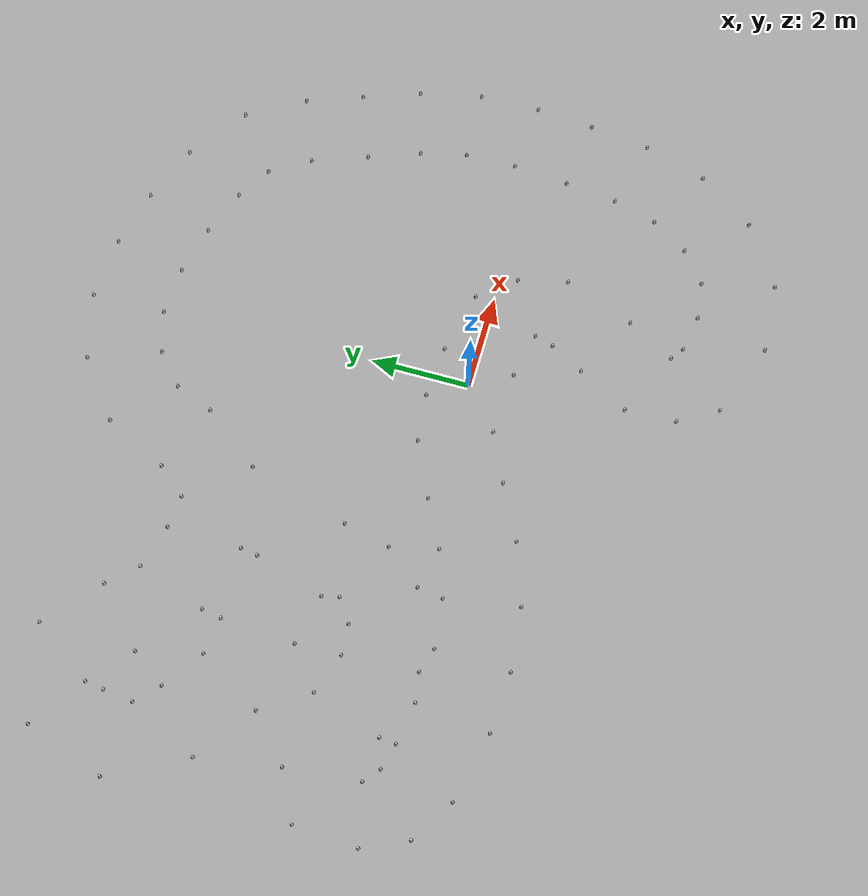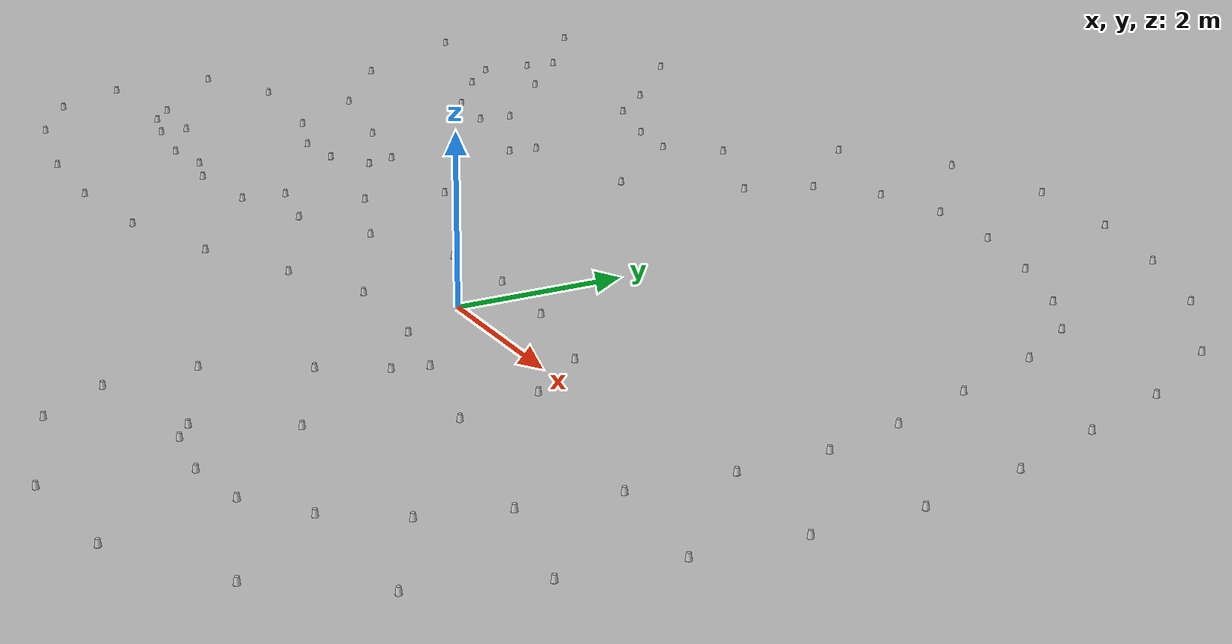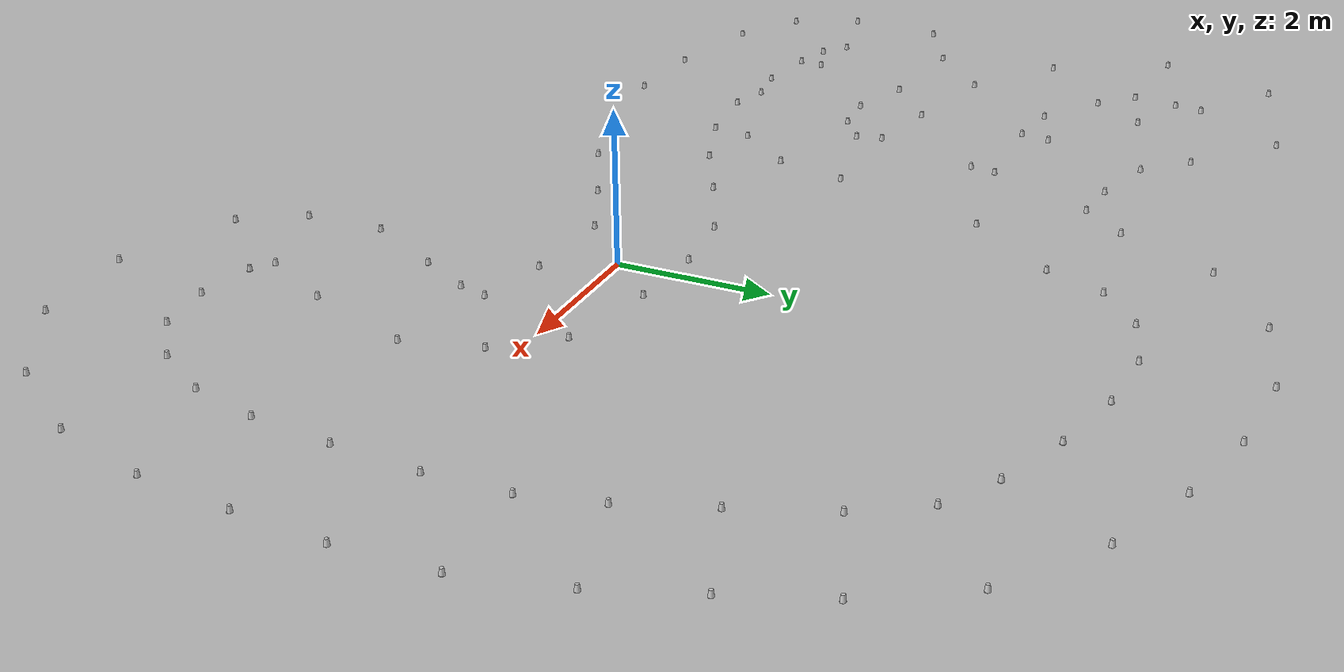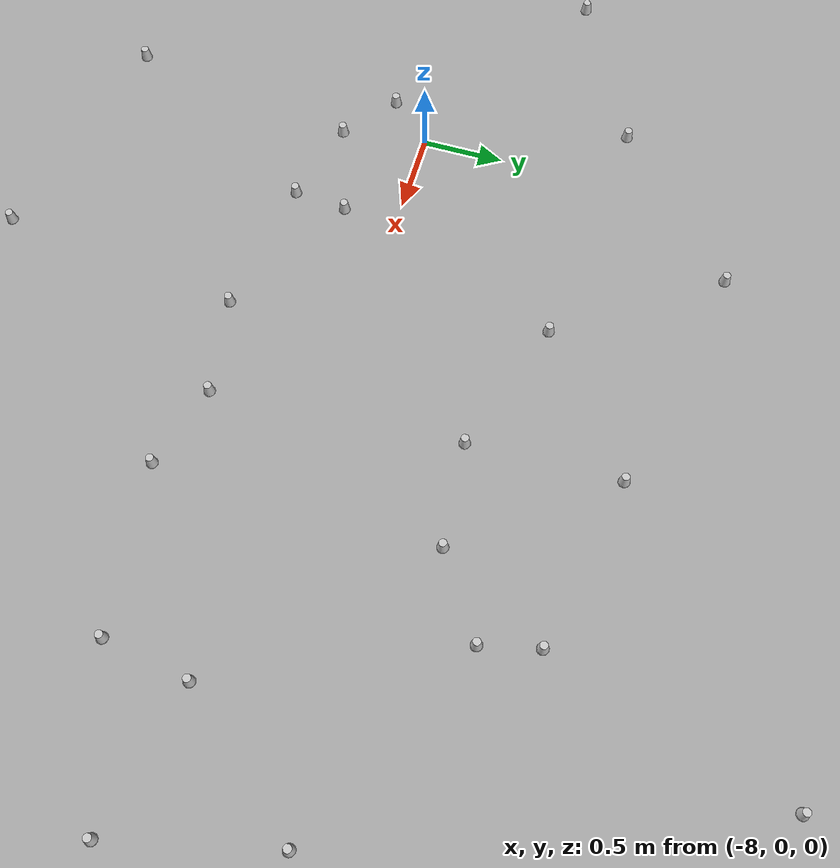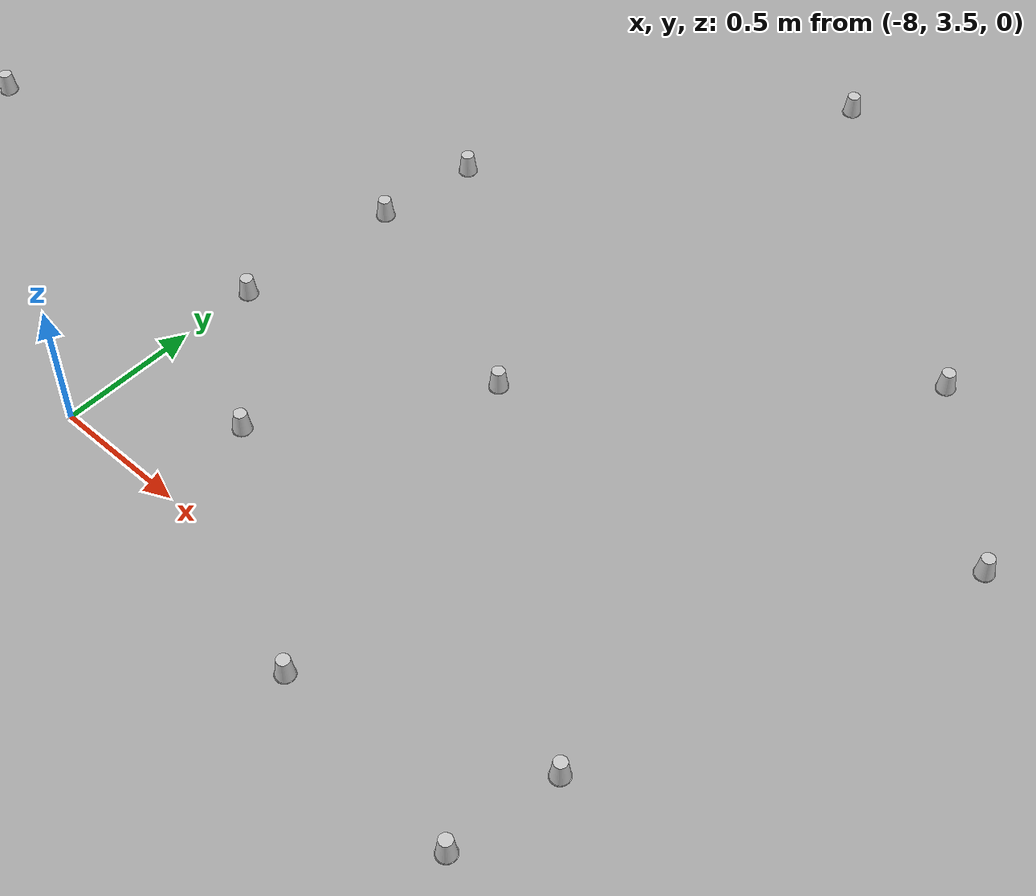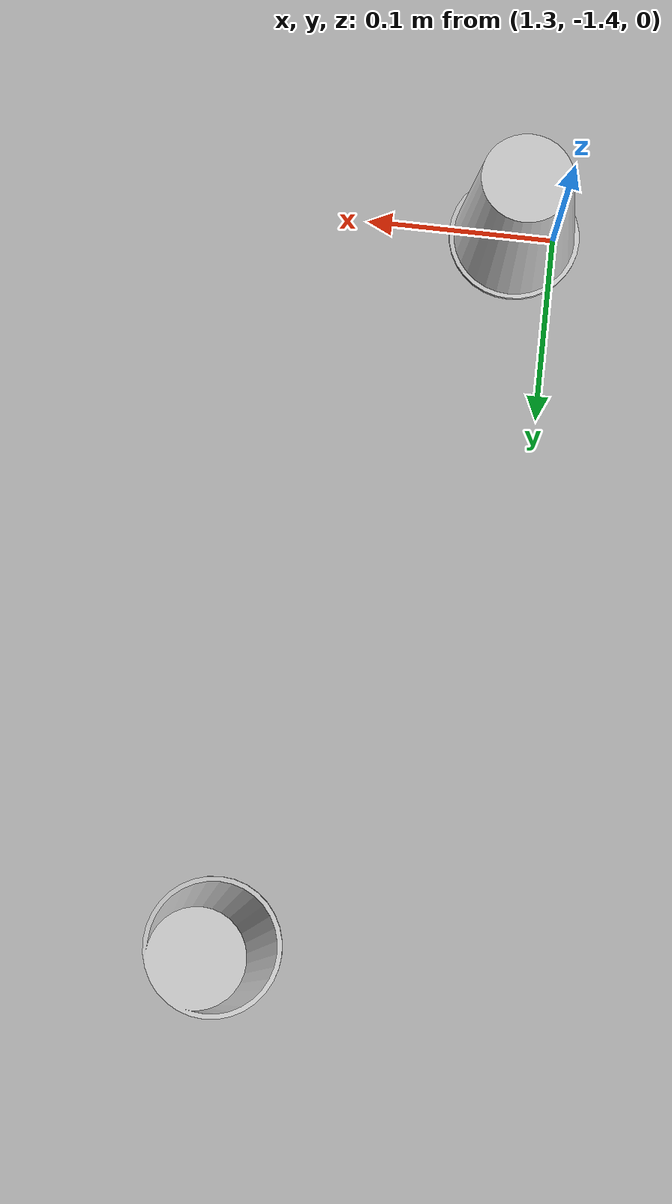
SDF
<?xml version='1.0' encoding='UTF-8'?>
<sdf version="1.4">
  <model name="some track">
    <include>
      <uri>model://cone_yellow</uri>
      <pose>0.4725554547216457 -0.8139902342028591 0 0 0 0</pose>
      <name>cone_right_0</name>
    </include>
    <include>
      <uri>model://cone_yellow</uri>
      <pose>1.4354806322972766 -1.0119955583584457 0 0 0 0</pose>
      <name>cone_right_1</name>
    </include>
    <include>
      <uri>model://cone_yellow</uri>
      <pose>1.3210125543507405 -1.3998350776600055 0 0 0 0</pose>
      <name>cone_right_2</name>
    </include>
    <include>
      <uri>model://cone_yellow</uri>
      <pose>0.9304011976994422 -2.087205001158921 0 0 0 0</pose>
      <name>cone_right_3</name>
    </include>
    <include>
      <uri>model://cone_yellow</uri>
      <pose>0.34009494143007024 -3.1314643163161255 0 0 0 0</pose>
      <name>cone_right_4</name>
    </include>
    <include>
      <uri>model://cone_yellow</uri>
      <pose>0.8522604359142806 -4.95180346813067 0 0 0 0</pose>
      <name>cone_right_5</name>
    </include>
    <include>
      <uri>model://cone_yellow</uri>
      <pose>2.4052985981422355 -5.5377495010026445 0 0 0 0</pose>
      <name>cone_right_6</name>
    </include>
    <include>
      <uri>model://cone_yellow</uri>
      <pose>3.8665558134749873 -5.436492384475434 0 0 0 0</pose>
      <name>cone_right_7</name>
    </include>
    <include>
      <uri>model://cone_yellow</uri>
      <pose>5.155438010207928 -4.620538943522423 0 0 0 0</pose>
      <name>cone_right_8</name>
    </include>
    <include>
      <uri>model://cone_yellow</uri>
      <pose>5.985788188286445 -3.457543913694553 0 0 0 0</pose>
      <name>cone_right_9</name>
    </include>
    <include>
      <uri>model://cone_yellow</uri>
      <pose>6.40136787882743 -2.159387939837507 0 0 0 0</pose>
      <name>cone_right_10</name>
    </include>
    <include>
      <uri>model://cone_yellow</uri>
      <pose>6.572779592997675 -0.9092053219489368 0 0 0 0</pose>
      <name>cone_right_11</name>
    </include>
    <include>
      <uri>model://cone_yellow</uri>
      <pose>6.686312839486658 0.29071421725383056 0 0 0 0</pose>
      <name>cone_right_12</name>
    </include>
    <include>
      <uri>model://cone_yellow</uri>
      <pose>6.669626318318273 1.5488097450844973 0 0 0 0</pose>
      <name>cone_right_13</name>
    </include>
    <include>
      <uri>model://cone_yellow</uri>
      <pose>6.385072315744193 2.822118374188426 0 0 0 0</pose>
      <name>cone_right_14</name>
    </include>
    <include>
      <uri>model://cone_yellow</uri>
      <pose>5.960102997624574 3.9824053876423755 0 0 0 0</pose>
      <name>cone_right_15</name>
    </include>
    <include>
      <uri>model://cone_yellow</uri>
      <pose>5.5350979982075 5.113763380013111 0 0 0 0</pose>
      <name>cone_right_16</name>
    </include>
    <include>
      <uri>model://cone_yellow</uri>
      <pose>4.831912891912985 6.264619455033376 0 0 0 0</pose>
      <name>cone_right_17</name>
    </include>
    <include>
      <uri>model://cone_yellow</uri>
      <pose>3.618531272425716 7.1069827178412135 0 0 0 0</pose>
      <name>cone_right_18</name>
    </include>
    <include>
      <uri>model://cone_yellow</uri>
      <pose>2.3994590784262746 7.555106008086529 0 0 0 0</pose>
      <name>cone_right_19</name>
    </include>
    <include>
      <uri>model://cone_yellow</uri>
      <pose>1.1743460504385295 7.8280561860753615 0 0 0 0</pose>
      <name>cone_right_20</name>
    </include>
    <include>
      <uri>model://cone_yellow</uri>
      <pose>-0.13865809924239447 7.890910468766077 0 0 0 0</pose>
      <name>cone_right_21</name>
    </include>
    <include>
      <uri>model://cone_yellow</uri>
      <pose>-1.5111117945836392 7.531560135286301 0 0 0 0</pose>
      <name>cone_right_22</name>
    </include>
    <include>
      <uri>model://cone_yellow</uri>
      <pose>-2.6879707564034145 6.6246286225815005 0 0 0 0</pose>
      <name>cone_right_23</name>
    </include>
    <include>
      <uri>model://cone_yellow</uri>
      <pose>-3.339191687392609 5.318333797878358 0 0 0 0</pose>
      <name>cone_right_24</name>
    </include>
    <include>
      <uri>model://cone_yellow</uri>
      <pose>-3.840121847094744 4.733307928678991 0 0 0 0</pose>
      <name>cone_right_25</name>
    </include>
    <include>
      <uri>model://cone_yellow</uri>
      <pose>-4.512941933197933 4.786959018972969 0 0 0 0</pose>
      <name>cone_right_26</name>
    </include>
    <include>
      <uri>model://cone_yellow</uri>
      <pose>-5.42150428394555 5.021656574610614 0 0 0 0</pose>
      <name>cone_right_27</name>
    </include>
    <include>
      <uri>model://cone_yellow</uri>
      <pose>-5.9433132729782105 5.570087085754786 0 0 0 0</pose>
      <name>cone_right_28</name>
    </include>
    <include>
      <uri>model://cone_yellow</uri>
      <pose>-7.007549515715984 6.488887004840013 0 0 0 0</pose>
      <name>cone_right_29</name>
    </include>
    <include>
      <uri>model://cone_yellow</uri>
      <pose>-8.920820562518504 5.9906332634076715 0 0 0 0</pose>
      <name>cone_right_30</name>
    </include>
    <include>
      <uri>model://cone_yellow</uri>
      <pose>-9.483491462981178 4.3784469582712475 0 0 0 0</pose>
      <name>cone_right_31</name>
    </include>
    <include>
      <uri>model://cone_yellow</uri>
      <pose>-8.669289720536689 2.857968736396943 0 0 0 0</pose>
      <name>cone_right_32</name>
    </include>
    <include>
      <uri>model://cone_yellow</uri>
      <pose>-7.513030509743381 2.0158522069862337 0 0 0 0</pose>
      <name>cone_right_33</name>
    </include>
    <include>
      <uri>model://cone_yellow</uri>
      <pose>-6.080770950101386 1.7143699207232481 0 0 0 0</pose>
      <name>cone_right_34</name>
    </include>
    <include>
      <uri>model://cone_yellow</uri>
      <pose>-5.042835887877365 1.50817537807084 0 0 0 0</pose>
      <name>cone_right_35</name>
    </include>
    <include>
      <uri>model://cone_yellow</uri>
      <pose>-4.964850591227302 1.1697127734244588 0 0 0 0</pose>
      <name>cone_right_36</name>
    </include>
    <include>
      <uri>model://cone_yellow</uri>
      <pose>-5.4325552398140085 0.852218334613837 0 0 0 0</pose>
      <name>cone_right_37</name>
    </include>
    <include>
      <uri>model://cone_yellow</uri>
      <pose>-6.058513060076365 0.8016658840380997 0 0 0 0</pose>
      <name>cone_right_38</name>
    </include>
    <include>
      <uri>model://cone_yellow</uri>
      <pose>-6.886461235431485 1.0837593523328648 0 0 0 0</pose>
      <name>cone_right_39</name>
    </include>
    <include>
      <uri>model://cone_yellow</uri>
      <pose>-8.394609941077217 1.225478773097474 0 0 0 0</pose>
      <name>cone_right_40</name>
    </include>
    <include>
      <uri>model://cone_yellow</uri>
      <pose>-9.431789853944798 -0.547637833775976 0 0 0 0</pose>
      <name>cone_right_41</name>
    </include>
    <include>
      <uri>model://cone_yellow</uri>
      <pose>-8.158297359651316 -1.960643422325852 0 0 0 0</pose>
      <name>cone_right_42</name>
    </include>
    <include>
      <uri>model://cone_yellow</uri>
      <pose>-6.733582468309698 -2.2769243080314263 0 0 0 0</pose>
      <name>cone_right_43</name>
    </include>
    <include>
      <uri>model://cone_yellow</uri>
      <pose>-5.500339509753644 -2.344887836524636 0 0 0 0</pose>
      <name>cone_right_44</name>
    </include>
    <include>
      <uri>model://cone_yellow</uri>
      <pose>-4.202695880764873 -2.205921709334302 0 0 0 0</pose>
      <name>cone_right_45</name>
    </include>
    <include>
      <uri>model://cone_yellow</uri>
      <pose>-2.949192916030346 -1.7802637748641517 0 0 0 0</pose>
      <name>cone_right_46</name>
    </include>
    <include>
      <uri>model://cone_yellow</uri>
      <pose>-1.844408087887414 -1.2154991113902787 0 0 0 0</pose>
      <name>cone_right_47</name>
    </include>
    <include>
      <uri>model://cone_yellow</uri>
      <pose>-0.8438139806831004 -0.7437896729734188 0 0 0 0</pose>
      <name>cone_right_48</name>
    </include>
    <include>
      <uri>model://cone_yellow</uri>
      <pose>0.3715799687581338 -4.172313879483028 0 0 0 0</pose>
      <name>cone_right_49</name>
    </include>
    <include>
      <uri>model://cone_yellow</uri>
      <pose>-9.354504938345201 0.7345397673438967 0 0 0 0</pose>
      <name>cone_right_50</name>
    </include>
    <include>
      <uri>model://cone_yellow</uri>
      <pose>-9.033222854326766 -1.426812434234627 0 0 0 0</pose>
      <name>cone_right_51</name>
    </include>
    <include>
      <uri>model://cone_blue</uri>
      <pose>0.6562311999712573 0.6747216991835161 0 0 0 0</pose>
      <name>cone_left_0</name>
    </include>
    <include>
      <uri>model://cone_blue</uri>
      <pose>1.9727267332880924 0.3884924376522898 0 0 0 0</pose>
      <name>cone_left_1</name>
    </include>
    <include>
      <uri>model://cone_blue</uri>
      <pose>2.81982816603441 -1.3402384152257136 0 0 0 0</pose>
      <name>cone_left_2</name>
    </include>
    <include>
      <uri>model://cone_blue</uri>
      <pose>2.258132365597228 -2.785151951716614 0 0 0 0</pose>
      <name>cone_left_3</name>
    </include>
    <include>
      <uri>model://cone_blue</uri>
      <pose>1.7024485787677384 -3.7591525883372183 0 0 0 0</pose>
      <name>cone_left_4</name>
    </include>
    <include>
      <uri>model://cone_blue</uri>
      <pose>1.9668239375271095 -3.9479368430890016 0 0 0 0</pose>
      <name>cone_left_5</name>
    </include>
    <include>
      <uri>model://cone_blue</uri>
      <pose>2.742714159413901 -4.076191859644724 0 0 0 0</pose>
      <name>cone_left_6</name>
    </include>
    <include>
      <uri>model://cone_blue</uri>
      <pose>3.529879683045689 -3.9747642349212313 0 0 0 0</pose>
      <name>cone_left_7</name>
    </include>
    <include>
      <uri>model://cone_blue</uri>
      <pose>4.190606234348851 -3.4720183105808022 0 0 0 0</pose>
      <name>cone_left_8</name>
    </include>
    <include>
      <uri>model://cone_blue</uri>
      <pose>4.682388112031152 -2.7151503245400583 0 0 0 0</pose>
      <name>cone_left_9</name>
    </include>
    <include>
      <uri>model://cone_blue</uri>
      <pose>4.942237357170456 -1.8116263537342598 0 0 0 0</pose>
      <name>cone_left_10</name>
    </include>
    <include>
      <uri>model://cone_blue</uri>
      <pose>5.082685929207834 -0.7370981659868222 0 0 0 0</pose>
      <name>cone_left_11</name>
    </include>
    <include>
      <uri>model://cone_blue</uri>
      <pose>5.191261775169678 0.41246114774764725 0 0 0 0</pose>
      <name>cone_left_12</name>
    </include>
    <include>
      <uri>model://cone_blue</uri>
      <pose>5.172178053930359 1.461352924414965 0 0 0 0</pose>
      <name>cone_left_13</name>
    </include>
    <include>
      <uri>model://cone_blue</uri>
      <pose>4.943730516891767 2.4067464698895766 0 0 0 0</pose>
      <name>cone_left_14</name>
    </include>
    <include>
      <uri>model://cone_blue</uri>
      <pose>4.557180861601028 3.45154808077439 0 0 0 0</pose>
      <name>cone_left_15</name>
    </include>
    <include>
      <uri>model://cone_blue</uri>
      <pose>4.13723705085611 4.569718554773615 0 0 0 0</pose>
      <name>cone_left_16</name>
    </include>
    <include>
      <uri>model://cone_blue</uri>
      <pose>3.634705617681192 5.360907807146464 0 0 0 0</pose>
      <name>cone_left_17</name>
    </include>
    <include>
      <uri>model://cone_blue</uri>
      <pose>2.9194832476060015 5.7798309333811035 0 0 0 0</pose>
      <name>cone_left_18</name>
    </include>
    <include>
      <uri>model://cone_blue</uri>
      <pose>1.9371552083436665 6.128124882876163 0 0 0 0</pose>
      <name>cone_left_19</name>
    </include>
    <include>
      <uri>model://cone_blue</uri>
      <pose>0.8980689394863639 6.353718722004151 0 0 0 0</pose>
      <name>cone_left_20</name>
    </include>
    <include>
      <uri>model://cone_blue</uri>
      <pose>-0.11210478835096482 6.391145513287818 0 0 0 0</pose>
      <name>cone_left_21</name>
    </include>
    <include>
      <uri>model://cone_blue</uri>
      <pose>-0.9797514789855486 6.128828437844663 0 0 0 0</pose>
      <name>cone_left_22</name>
    </include>
    <include>
      <uri>model://cone_blue</uri>
      <pose>-1.6194851449652823 5.571852056471824 0 0 0 0</pose>
      <name>cone_left_23</name>
    </include>
    <include>
      <uri>model://cone_blue</uri>
      <pose>-1.937624001047956 4.783910725215419 0 0 0 0</pose>
      <name>cone_left_24</name>
    </include>
    <include>
      <uri>model://cone_blue</uri>
      <pose>-2.8658840501541785 3.592755117533276 0 0 0 0</pose>
      <name>cone_left_25</name>
    </include>
    <include>
      <uri>model://cone_blue</uri>
      <pose>-4.541176277975358 3.2872247685889255 0 0 0 0</pose>
      <name>cone_left_26</name>
    </include>
    <include>
      <uri>model://cone_blue</uri>
      <pose>-5.914397388511286 3.604950399191184 0 0 0 0</pose>
      <name>cone_left_27</name>
    </include>
    <include>
      <uri>model://cone_blue</uri>
      <pose>-7.050641537140434 4.558245143855026 0 0 0 0</pose>
      <name>cone_left_28</name>
    </include>
    <include>
      <uri>model://cone_blue</uri>
      <pose>-7.8593725832234425 5.254222086061567 0 0 0 0</pose>
      <name>cone_left_29</name>
    </include>
    <include>
      <uri>model://cone_blue</uri>
      <pose>-7.914459373760014 4.878321635418196 0 0 0 0</pose>
      <name>cone_left_30</name>
    </include>
    <include>
      <uri>model://cone_blue</uri>
      <pose>-7.9870033609611255 4.275863526312554 0 0 0 0</pose>
      <name>cone_left_31</name>
    </include>
    <include>
      <uri>model://cone_blue</uri>
      <pose>-7.544652950960567 3.850537190720061 0 0 0 0</pose>
      <name>cone_left_32</name>
    </include>
    <include>
      <uri>model://cone_blue</uri>
      <pose>-6.742818256140315 3.303009184359112 0 0 0 0</pose>
      <name>cone_left_33</name>
    </include>
    <include>
      <uri>model://cone_blue</uri>
      <pose>-5.9847152287013605 3.2112911939992745 0 0 0 0</pose>
      <name>cone_left_34</name>
    </include>
    <include>
      <uri>model://cone_blue</uri>
      <pose>-4.598561274544167 2.940872159650124 0 0 0 0</pose>
      <name>cone_left_35</name>
    </include>
    <include>
      <uri>model://cone_blue</uri>
      <pose>-3.503961069355325 1.510009415906668 0 0 0 0</pose>
      <name>cone_left_36</name>
    </include>
    <include>
      <uri>model://cone_blue</uri>
      <pose>-4.36866502807253 -0.20520193063582798 0 0 0 0</pose>
      <name>cone_left_37</name>
    </include>
    <include>
      <uri>model://cone_blue</uri>
      <pose>-5.966136971855445 -0.6954869666505001 0 0 0 0</pose>
      <name>cone_left_38</name>
    </include>
    <include>
      <uri>model://cone_blue</uri>
      <pose>-7.373759829921871 -0.3348808697839671 0 0 0 0</pose>
      <name>cone_left_39</name>
    </include>
    <include>
      <uri>model://cone_blue</uri>
      <pose>-8.249481317776496 -0.26748394669791226 0 0 0 0</pose>
      <name>cone_left_40</name>
    </include>
    <include>
      <uri>model://cone_blue</uri>
      <pose>-7.931969653622951 -0.5244135640019945 0 0 0 0</pose>
      <name>cone_left_41</name>
    </include>
    <include>
      <uri>model://cone_blue</uri>
      <pose>-7.406607249104606 -0.6625825694740779 0 0 0 0</pose>
      <name>cone_left_42</name>
    </include>
    <include>
      <uri>model://cone_blue</uri>
      <pose>-6.554031044694869 -0.7877093180860897 0 0 0 0</pose>
      <name>cone_left_43</name>
    </include>
    <include>
      <uri>model://cone_blue</uri>
      <pose>-5.456258349150978 -0.8455356926705238 0 0 0 0</pose>
      <name>cone_left_44</name>
    </include>
    <include>
      <uri>model://cone_blue</uri>
      <pose>-4.455423117147355 -0.7273653377371709 0 0 0 0</pose>
      <name>cone_left_45</name>
    </include>
    <include>
      <uri>model://cone_blue</uri>
      <pose>-3.508476591420325 -0.38842981549892774 0 0 0 0</pose>
      <name>cone_left_46</name>
    </include>
    <include>
      <uri>model://cone_blue</uri>
      <pose>-2.55514074726495 0.10543203249805255 0 0 0 0</pose>
      <name>cone_left_47</name>
    </include>
    <include>
      <uri>model://cone_blue</uri>
      <pose>-1.4334830287253215 0.635445772402381 0 0 0 0</pose>
      <name>cone_left_48</name>
    </include>
    <include>
      <uri>model://cone_blue</uri>
      <pose>-0.4316252412879251 0.7491434984356289 0 0 0 0</pose>
      <name>cone_left_49</name>
    </include>
    <include>
      <uri>model://cone_blue</uri>
      <pose>2.5767433636119037 -0.3461363334453793 0 0 0 0</pose>
      <name>cone_left_50</name>
    </include>
    <include>
      <uri>model://cone_blue</uri>
      <pose>-3.732068468022703 0.5592949942429257 0 0 0 0</pose>
      <name>cone_left_51</name>
    </include>
  </model>
</sdf>

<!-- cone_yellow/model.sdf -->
<sdf version='1.4'>
  <model name="cone_yellow">
    <link name="link">
    <collision name="collision"><geometry><box><size> 0.05 0.05 0.01</size>
             </box></geometry></collision>
      <visual name="visual">
        <geometry>
          <mesh>
            <uri>model://cup.dae</uri>
            <scale>1 1 1</scale>
          </mesh>
        </geometry>
        <material>
            <script>
              <uri>model://cone_yellow/materials/scripts</uri>
              <uri>model://cone_yellow/materials/textures</uri>
              <name>cone_yellow/Image</name>
            </script>
        </material>
      </visual>
    </link>
  </model>
</sdf>

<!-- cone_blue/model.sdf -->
<sdf version='1.4'>
  <model name="cone_blue">
    <link name="link">
    <collision name="collision"><geometry><box><size> 0.05 0.05 0.01</size>
             </box></geometry></collision>
      <visual name="visual">
        <geometry>
          <mesh>
            <uri>model://cup.dae</uri>
            <scale>1 1 1</scale>
          </mesh>
        </geometry>
        <material>
            <script>
              <uri>model://cone_blue/materials/scripts</uri>
              <uri>model://cone_blue/materials/textures</uri>
              <name>cone_blue/Image</name>
            </script>
        </material>
      </visual>
    </link>
  </model>
</sdf>
